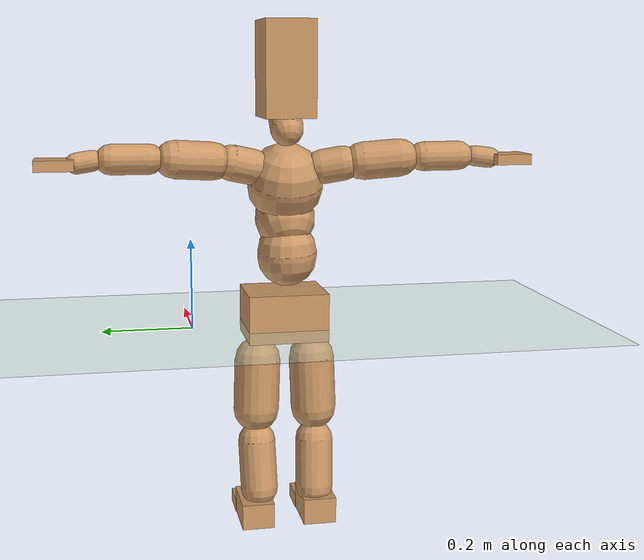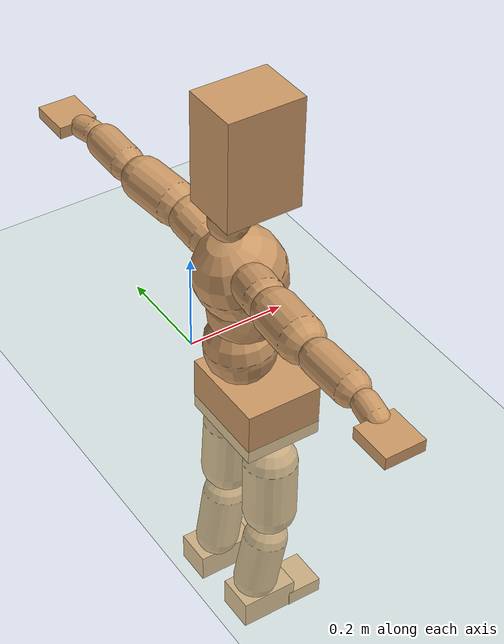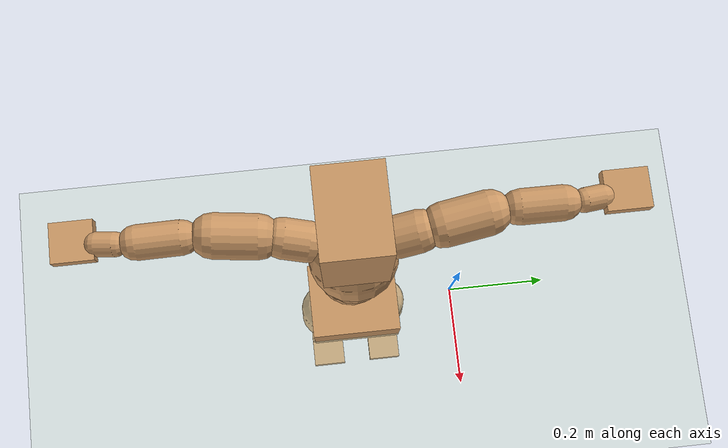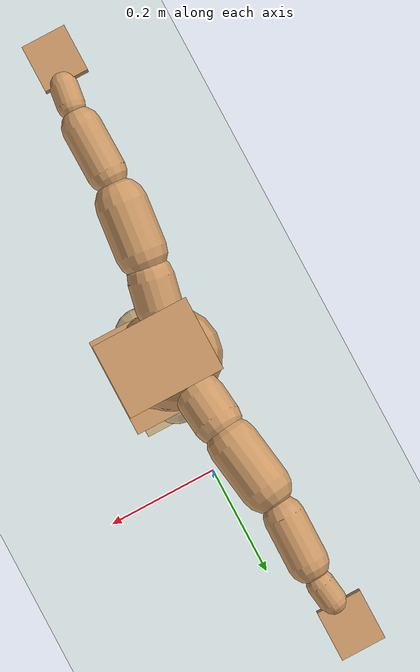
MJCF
<mujoco model="humanoid">
  <compiler coordinate="local"/>
  <default>
    <joint damping="0.0" armature="0.01" stiffness="0.0" limited="true"/>
    <geom conaffinity="1" condim="3" contype="7" margin="0.001" rgba="0.8 0.6 .4 1"/>
  </default>
  <asset>
    <texture type="skybox" builtin="gradient" rgb1=".4 .5 .6" rgb2="0 0 0" width="100" height="100"/>
    <texture builtin="flat" height="1278" mark="cross" markrgb="1 1 1" name="texgeom" random="0.01" rgb1="0.8 0.6 0.4" rgb2="0.8 0.6 0.4" type="cube" width="127"/>
    <texture builtin="checker" height="100" name="texplane" rgb1="0 0 0" rgb2="0.8 0.8 0.8" type="2d" width="100"/>
    <material name="MatPlane" reflectance="0.5" shininess="1" specular="1" texrepeat="60 60" texture="texplane"/>
    <material name="geom" texture="texgeom" texuniform="true"/>
  </asset>
  <worldbody>
    <light cutoff="100" diffuse="1 1 1" dir="-0 0 -1.3" directional="true" exponent="1" pos="0 0 1.3" specular=".1 .1 .1"/>
    <geom conaffinity="1" condim="3" name="floor" pos="0 0 0" rgba="0.8 0.9 0.8 1" size="100 100 .2" type="plane" material="MatPlane"/>
    <body name="Pelvis" pos="-0.0029 -0.2084 0.0307">
      <freejoint name="Pelvis"/>
      <geom type="box" pos="0.0101 0.0004 -0.0052" size="0.0749 0.0892 0.0541" quat="1.0000 0.0000 0.0000 0.0000" name="Pelvis" density="1000"/>
      <body name="L_Hip" pos="-0.0013 0.0618 -0.0706">
        <joint name="L_Hip_x" type="hinge" pos="0 0 0" axis="1 0 0" stiffness="800" damping="80" armature="0.02" range="-180.0000 180.0000"/>
        <joint name="L_Hip_y" type="hinge" pos="0 0 0" axis="0 1 0" stiffness="800" damping="80" armature="0.02" range="-180.0000 180.0000"/>
        <joint name="L_Hip_z" type="hinge" pos="0 0 0" axis="0 0 1" stiffness="800" damping="80" armature="0.02" range="-180.0000 180.0000"/>
        <geom type="capsule" contype="1" conaffinity="1" density="2040.816327" fromto="-0.0009 0.0013 -0.0384 -0.0035 0.0052 -0.1534" size="0.0514" name="L_Hip"/>
        <body name="L_Knee" pos="-0.0043 0.0065 -0.1918">
          <joint name="L_Knee_x" type="hinge" pos="0 0 0" axis="1 0 0" stiffness="800" damping="80" armature="0.02" range="-180.0000 180.0000"/>
          <joint name="L_Knee_y" type="hinge" pos="0 0 0" axis="0 1 0" stiffness="800" damping="80" armature="0.02" range="-180.0000 180.0000"/>
          <joint name="L_Knee_z" type="hinge" pos="0 0 0" axis="0 0 1" stiffness="800" damping="80" armature="0.02" range="-180.0000 180.0000"/>
          <geom type="capsule" contype="1" conaffinity="1" density="1234.567901" fromto="-0.0061 -0.0009 -0.0358 -0.0242 -0.0037 -0.1431" size="0.0421" name="L_Knee"/>
          <body name="L_Ankle" pos="-0.0303 -0.0047 -0.1789">
            <joint name="L_Ankle_x" type="hinge" pos="0 0 0" axis="1 0 0" stiffness="800" damping="80" armature="0.02" range="-180.0000 180.0000"/>
            <joint name="L_Ankle_y" type="hinge" pos="0 0 0" axis="0 1 0" stiffness="800" damping="80" armature="0.02" range="-180.0000 180.0000"/>
            <joint name="L_Ankle_z" type="hinge" pos="0 0 0" axis="0 0 1" stiffness="800" damping="80" armature="0.02" range="-180.0000 180.0000"/>
            <geom type="box" pos="0.0142 0.0106 -0.0148" size="0.0589 0.0364 0.0285" quat="1.0000 0.0000 0.0000 0.0000" name="L_Ankle" density="1000"/>
            <body name="L_Toe" pos="0.0779 0.0127 -0.0315">
              <joint name="L_Toe_x" type="hinge" pos="0 0 0" axis="1 0 0" stiffness="500" damping="50" armature="0.02" range="-180.0000 180.0000"/>
              <joint name="L_Toe_y" type="hinge" pos="0 0 0" axis="0 1 0" stiffness="500" damping="50" armature="0.02" range="-180.0000 180.0000"/>
              <joint name="L_Toe_z" type="hinge" pos="0 0 0" axis="0 0 1" stiffness="500" damping="50" armature="0.02" range="-180.0000 180.0000"/>
              <geom type="box" pos="0.0171 -0.0022 0.0024" size="0.0365 0.038 0.0142" quat="1.0000 0.0000 0.0000 0.0000" name="L_Toe" density="1000"/>
            </body>
          </body>
        </body>
      </body>
      <body name="R_Hip" pos="0.0024 -0.0607 -0.0697">
        <joint name="R_Hip_x" type="hinge" pos="0 0 0" axis="1 0 0" stiffness="800" damping="80" armature="0.02" range="-180.0000 180.0000"/>
        <joint name="R_Hip_y" type="hinge" pos="0 0 0" axis="0 1 0" stiffness="800" damping="80" armature="0.02" range="-180.0000 180.0000"/>
        <joint name="R_Hip_z" type="hinge" pos="0 0 0" axis="0 0 1" stiffness="800" damping="80" armature="0.02" range="-180.0000 180.0000"/>
        <geom type="capsule" contype="1" conaffinity="1" density="2040.816327" fromto="-0.0006 -0.0015 -0.0396 -0.0025 -0.0060 -0.1584" size="0.0512" name="R_Hip"/>
        <body name="R_Knee" pos="-0.0031 -0.0076 -0.198">
          <joint name="R_Knee_x" type="hinge" pos="0 0 0" axis="1 0 0" stiffness="800" damping="80" armature="0.02" range="-180.0000 180.0000"/>
          <joint name="R_Knee_y" type="hinge" pos="0 0 0" axis="0 1 0" stiffness="800" damping="80" armature="0.02" range="-180.0000 180.0000"/>
          <joint name="R_Knee_z" type="hinge" pos="0 0 0" axis="0 0 1" stiffness="800" damping="80" armature="0.02" range="-180.0000 180.0000"/>
          <geom type="capsule" contype="1" conaffinity="1" density="1234.567901" fromto="-0.0063 0.0010 -0.0357 -0.0251 0.0040 -0.1430" size="0.0427" name="R_Knee"/>
          <body name="R_Ankle" pos="-0.0314 0.0051 -0.1787">
            <joint name="R_Ankle_x" type="hinge" pos="0 0 0" axis="1 0 0" stiffness="800" damping="80" armature="0.02" range="-180.0000 180.0000"/>
            <joint name="R_Ankle_y" type="hinge" pos="0 0 0" axis="0 1 0" stiffness="800" damping="80" armature="0.02" range="-180.0000 180.0000"/>
            <joint name="R_Ankle_z" type="hinge" pos="0 0 0" axis="0 0 1" stiffness="800" damping="80" armature="0.02" range="-180.0000 180.0000"/>
            <geom type="box" pos="0.0135 -0.0053 -0.0098" size="0.0558 0.0371 0.0295" quat="1.0000 0.0000 0.0000 0.0000" name="R_Ankle" density="1000"/>
            <body name="R_Toe" pos="0.0785 -0.0078 -0.023">
              <joint name="R_Toe_x" type="hinge" pos="0 0 0" axis="1 0 0" stiffness="500" damping="50" armature="0.02" range="-180.0000 180.0000"/>
              <joint name="R_Toe_y" type="hinge" pos="0 0 0" axis="0 1 0" stiffness="500" damping="50" armature="0.02" range="-180.0000 180.0000"/>
              <joint name="R_Toe_z" type="hinge" pos="0 0 0" axis="0 0 1" stiffness="500" damping="50" armature="0.02" range="-180.0000 180.0000"/>
              <geom type="box" pos="0.0154 0.0026 -0.0004" size="0.0355 0.0385 0.016" quat="1.0000 0.0000 0.0000 0.0000" name="R_Toe" density="1000"/>
            </body>
          </body>
        </body>
      </body>
      <body name="Torso" pos="-0.0219 -0.0021 0.08">
        <joint name="Torso_x" type="hinge" pos="0 0 0" axis="1 0 0" stiffness="1000" damping="100" armature="0.02" range="-180.0000 180.0000"/>
        <joint name="Torso_y" type="hinge" pos="0 0 0" axis="0 1 0" stiffness="1000" damping="100" armature="0.02" range="-180.0000 180.0000"/>
        <joint name="Torso_z" type="hinge" pos="0 0 0" axis="0 0 1" stiffness="1000" damping="100" armature="0.02" range="-180.0000 180.0000"/>
        <geom type="capsule" contype="1" conaffinity="1" density="2040.816327" fromto="-0.0044 0.0015 0.0512 -0.0053 0.0018 0.0626" size="0.0659" name="Torso"/>
        <body name="Spine" pos="-0.0097 0.0033 0.1138">
          <joint name="Spine_x" type="hinge" pos="0 0 0" axis="1 0 0" stiffness="1000" damping="100" armature="0.02" range="-180.0000 180.0000"/>
          <joint name="Spine_y" type="hinge" pos="0 0 0" axis="0 1 0" stiffness="1000" damping="100" armature="0.02" range="-180.0000 180.0000"/>
          <joint name="Spine_z" type="hinge" pos="0 0 0" axis="0 0 1" stiffness="1000" damping="100" armature="0.02" range="-180.0000 180.0000"/>
          <geom type="capsule" contype="1" conaffinity="1" density="2040.816327" fromto="0.0125 0.0013 0.0192 0.0152 0.0016 0.0234" size="0.066" name="Spine"/>
          <body name="Chest" pos="0.0277 0.0029 0.0426">
            <joint name="Chest_x" type="hinge" pos="0 0 0" axis="1 0 0" stiffness="1000" damping="100" armature="0.02" range="-180.0000 180.0000"/>
            <joint name="Chest_y" type="hinge" pos="0 0 0" axis="0 1 0" stiffness="1000" damping="100" armature="0.02" range="-180.0000 180.0000"/>
            <joint name="Chest_z" type="hinge" pos="0 0 0" axis="0 0 1" stiffness="1000" damping="100" armature="0.02" range="-180.0000 180.0000"/>
            <geom type="capsule" contype="1" conaffinity="1" density="2040.816327" fromto="-0.0207 -0.0004 0.0517 -0.0253 -0.0005 0.0632" size="0.0826" name="Chest"/>
            <body name="Neck" pos="-0.0561 -0.001 0.163">
              <joint name="Neck_x" type="hinge" pos="0 0 0" axis="1 0 0" stiffness="500" damping="50" armature="0.02" range="-180.0000 180.0000"/>
              <joint name="Neck_y" type="hinge" pos="0 0 0" axis="0 1 0" stiffness="500" damping="50" armature="0.02" range="-180.0000 180.0000"/>
              <joint name="Neck_z" type="hinge" pos="0 0 0" axis="0 0 1" stiffness="500" damping="50" armature="0.02" range="-180.0000 180.0000"/>
              <geom type="capsule" contype="1" conaffinity="1" density="1000" fromto="0.0092 0.0006 0.0109 0.0368 0.0023 0.0437" size="0.0357" name="Neck"/>
              <body name="Head" pos="0.046 0.0028 0.0546">
                <joint name="Head_x" type="hinge" pos="0 0 0" axis="1 0 0" stiffness="500" damping="50" armature="0.02" range="-180.0000 180.0000"/>
                <joint name="Head_y" type="hinge" pos="0 0 0" axis="0 1 0" stiffness="500" damping="50" armature="0.02" range="-180.0000 180.0000"/>
                <joint name="Head_z" type="hinge" pos="0 0 0" axis="0 0 1" stiffness="500" damping="50" armature="0.02" range="-180.0000 180.0000"/>
                <geom type="box" pos="-0.0054 -0.0049 0.0834" size="0.0713 0.0547 0.1031" quat="1.0000 0.0000 0.0000 0.0000" name="Head" density="1000"/>
              </body>
            </body>
            <body name="L_Thorax" pos="-0.0374 0.0602 0.0913">
              <joint name="L_Thorax_x" type="hinge" pos="0 0 0" axis="1 0 0" stiffness="500" damping="50" armature="0.02" range="-180.0000 180.0000"/>
              <joint name="L_Thorax_y" type="hinge" pos="0 0 0" axis="0 1 0" stiffness="500" damping="50" armature="0.02" range="-180.0000 180.0000"/>
              <joint name="L_Thorax_z" type="hinge" pos="0 0 0" axis="0 0 1" stiffness="500" damping="50" armature="0.02" range="-180.0000 180.0000"/>
              <geom type="capsule" contype="1" conaffinity="1" density="1000" fromto="-0.0016 0.0147 0.0032 -0.0063 0.0588 0.0130" size="0.0391" name="L_Thorax"/>
              <body name="L_Shoulder" pos="-0.0079 0.0735 0.0162">
                <joint name="L_Shoulder_x" type="hinge" pos="0 0 0" axis="1 0 0" stiffness="500" damping="50" armature="0.02" range="-720.0000 720.0000"/>
                <joint name="L_Shoulder_y" type="hinge" pos="0 0 0" axis="0 1 0" stiffness="500" damping="50" armature="0.02" range="-720.0000 720.0000"/>
                <joint name="L_Shoulder_z" type="hinge" pos="0 0 0" axis="0 0 1" stiffness="500" damping="50" armature="0.02" range="-720.0000 720.0000"/>
                <geom type="capsule" contype="1" conaffinity="1" density="1000" fromto="-0.0040 0.0270 0.0019 -0.0161 0.1081 0.0075" size="0.041" name="L_Shoulder"/>
                <body name="L_Elbow" pos="-0.0201 0.1351 0.0094">
                  <joint name="L_Elbow_x" type="hinge" pos="0 0 0" axis="1 0 0" stiffness="500" damping="50" armature="0.02" range="-720.0000 720.0000"/>
                  <joint name="L_Elbow_y" type="hinge" pos="0 0 0" axis="0 1 0" stiffness="500" damping="50" armature="0.02" range="-720.0000 720.0000"/>
                  <joint name="L_Elbow_z" type="hinge" pos="0 0 0" axis="0 0 1" stiffness="500" damping="50" armature="0.02" range="-720.0000 720.0000"/>
                  <geom type="capsule" contype="1" conaffinity="1" density="1000" fromto="0.0002 0.0262 0.0001 0.0009 0.1048 0.0003" size="0.0323" name="L_Elbow"/>
                  <body name="L_Wrist" pos="0.0011 0.1309 0.0004">
                    <joint name="L_Wrist_x" type="hinge" pos="0 0 0" axis="1 0 0" stiffness="300" damping="30" armature="0.02" range="-180.0000 180.0000"/>
                    <joint name="L_Wrist_y" type="hinge" pos="0 0 0" axis="0 1 0" stiffness="300" damping="30" armature="0.02" range="-180.0000 180.0000"/>
                    <joint name="L_Wrist_z" type="hinge" pos="0 0 0" axis="0 0 1" stiffness="300" damping="30" armature="0.02" range="-180.0000 180.0000"/>
                    <geom type="capsule" contype="1" conaffinity="1" density="1000" fromto="-0.0015 0.0109 -0.0016 -0.0060 0.0437 -0.0065" size="0.0222" name="L_Wrist"/>
                    <body name="L_Hand" pos="-0.0075 0.0546 -0.0082">
                      <joint name="L_Hand_x" type="hinge" pos="0 0 0" axis="1 0 0" stiffness="300" damping="30" armature="0.02" range="-180.0000 180.0000"/>
                      <joint name="L_Hand_y" type="hinge" pos="0 0 0" axis="0 1 0" stiffness="300" damping="30" armature="0.02" range="-180.0000 180.0000"/>
                      <joint name="L_Hand_z" type="hinge" pos="0 0 0" axis="0 0 1" stiffness="300" damping="30" armature="0.02" range="-180.0000 180.0000"/>
                      <geom type="box" pos="-0.0053 0.0338 0.0004" size="0.0369 0.0405 0.0114" quat="1.0000 0.0000 0.0000 0.0000" name="L_Hand" density="1000"/>
                    </body>
                  </body>
                </body>
              </body>
            </body>
            <body name="R_Thorax" pos="-0.0443 -0.062 0.0903">
              <joint name="R_Thorax_x" type="hinge" pos="0 0 0" axis="1 0 0" stiffness="500" damping="50" armature="0.02" range="-180.0000 180.0000"/>
              <joint name="R_Thorax_y" type="hinge" pos="0 0 0" axis="0 1 0" stiffness="500" damping="50" armature="0.02" range="-180.0000 180.0000"/>
              <joint name="R_Thorax_z" type="hinge" pos="0 0 0" axis="0 0 1" stiffness="500" damping="50" armature="0.02" range="-180.0000 180.0000"/>
              <geom type="capsule" contype="1" conaffinity="1" density="1000" fromto="-0.0032 -0.0150 0.0027 -0.0127 -0.0600 0.0108" size="0.0375" name="R_Thorax"/>
              <body name="R_Shoulder" pos="-0.0158 -0.075 0.0135">
                <joint name="R_Shoulder_x" type="hinge" pos="0 0 0" axis="1 0 0" stiffness="500" damping="50" armature="0.02" range="-720.0000 720.0000"/>
                <joint name="R_Shoulder_y" type="hinge" pos="0 0 0" axis="0 1 0" stiffness="500" damping="50" armature="0.02" range="-720.0000 720.0000"/>
                <joint name="R_Shoulder_z" type="hinge" pos="0 0 0" axis="0 0 1" stiffness="500" damping="50" armature="0.02" range="-720.0000 720.0000"/>
                <geom type="capsule" contype="1" conaffinity="1" density="1000" fromto="-0.0028 -0.0264 0.0021 -0.0111 -0.1054 0.0086" size="0.0412" name="R_Shoulder"/>
                <body name="R_Elbow" pos="-0.0139 -0.1318 0.0107">
                  <joint name="R_Elbow_x" type="hinge" pos="0 0 0" axis="1 0 0" stiffness="500" damping="50" armature="0.02" range="-720.0000 720.0000"/>
                  <joint name="R_Elbow_y" type="hinge" pos="0 0 0" axis="0 1 0" stiffness="500" damping="50" armature="0.02" range="-720.0000 720.0000"/>
                  <joint name="R_Elbow_z" type="hinge" pos="0 0 0" axis="0 0 1" stiffness="500" damping="50" armature="0.02" range="-720.0000 720.0000"/>
                  <geom type="capsule" contype="1" conaffinity="1" density="1000" fromto="0.0003 -0.0265 0.0001 0.0013 -0.1060 0.0004" size="0.0317" name="R_Elbow"/>
                  <body name="R_Wrist" pos="0.0016 -0.1325 0.0005">
                    <joint name="R_Wrist_x" type="hinge" pos="0 0 0" axis="1 0 0" stiffness="300" damping="30" armature="0.02" range="-180.0000 180.0000"/>
                    <joint name="R_Wrist_y" type="hinge" pos="0 0 0" axis="0 1 0" stiffness="300" damping="30" armature="0.02" range="-180.0000 180.0000"/>
                    <joint name="R_Wrist_z" type="hinge" pos="0 0 0" axis="0 0 1" stiffness="300" damping="30" armature="0.02" range="-180.0000 180.0000"/>
                    <geom type="capsule" contype="1" conaffinity="1" density="1000" fromto="-0.0015 -0.0108 -0.0012 -0.0058 -0.0433 -0.0050" size="0.0225" name="R_Wrist"/>
                    <body name="R_Hand" pos="-0.0073 -0.0541 -0.0062">
                      <joint name="R_Hand_x" type="hinge" pos="0 0 0" axis="1 0 0" stiffness="300" damping="30" armature="0.02" range="-180.0000 180.0000"/>
                      <joint name="R_Hand_y" type="hinge" pos="0 0 0" axis="0 1 0" stiffness="300" damping="30" armature="0.02" range="-180.0000 180.0000"/>
                      <joint name="R_Hand_z" type="hinge" pos="0 0 0" axis="0 0 1" stiffness="300" damping="30" armature="0.02" range="-180.0000 180.0000"/>
                      <geom type="box" pos="-0.0060 -0.0311 -0.0007" size="0.0365 0.0386 0.0113" quat="1.0000 0.0000 0.0000 0.0000" name="R_Hand" density="1000"/>
                    </body>
                  </body>
                </body>
              </body>
            </body>
          </body>
        </body>
      </body>
    </body>
  </worldbody>
  <actuator>
    <motor name="L_Hip_x" joint="L_Hip_x" gear="500"/>
    <motor name="L_Hip_y" joint="L_Hip_y" gear="500"/>
    <motor name="L_Hip_z" joint="L_Hip_z" gear="500"/>
    <motor name="L_Knee_x" joint="L_Knee_x" gear="500"/>
    <motor name="L_Knee_y" joint="L_Knee_y" gear="500"/>
    <motor name="L_Knee_z" joint="L_Knee_z" gear="500"/>
    <motor name="L_Ankle_x" joint="L_Ankle_x" gear="500"/>
    <motor name="L_Ankle_y" joint="L_Ankle_y" gear="500"/>
    <motor name="L_Ankle_z" joint="L_Ankle_z" gear="500"/>
    <motor name="L_Toe_x" joint="L_Toe_x" gear="500"/>
    <motor name="L_Toe_y" joint="L_Toe_y" gear="500"/>
    <motor name="L_Toe_z" joint="L_Toe_z" gear="500"/>
    <motor name="R_Hip_x" joint="R_Hip_x" gear="500"/>
    <motor name="R_Hip_y" joint="R_Hip_y" gear="500"/>
    <motor name="R_Hip_z" joint="R_Hip_z" gear="500"/>
    <motor name="R_Knee_x" joint="R_Knee_x" gear="500"/>
    <motor name="R_Knee_y" joint="R_Knee_y" gear="500"/>
    <motor name="R_Knee_z" joint="R_Knee_z" gear="500"/>
    <motor name="R_Ankle_x" joint="R_Ankle_x" gear="500"/>
    <motor name="R_Ankle_y" joint="R_Ankle_y" gear="500"/>
    <motor name="R_Ankle_z" joint="R_Ankle_z" gear="500"/>
    <motor name="R_Toe_x" joint="R_Toe_x" gear="500"/>
    <motor name="R_Toe_y" joint="R_Toe_y" gear="500"/>
    <motor name="R_Toe_z" joint="R_Toe_z" gear="500"/>
    <motor name="Torso_x" joint="Torso_x" gear="500"/>
    <motor name="Torso_y" joint="Torso_y" gear="500"/>
    <motor name="Torso_z" joint="Torso_z" gear="500"/>
    <motor name="Spine_x" joint="Spine_x" gear="500"/>
    <motor name="Spine_y" joint="Spine_y" gear="500"/>
    <motor name="Spine_z" joint="Spine_z" gear="500"/>
    <motor name="Chest_x" joint="Chest_x" gear="500"/>
    <motor name="Chest_y" joint="Chest_y" gear="500"/>
    <motor name="Chest_z" joint="Chest_z" gear="500"/>
    <motor name="Neck_x" joint="Neck_x" gear="500"/>
    <motor name="Neck_y" joint="Neck_y" gear="500"/>
    <motor name="Neck_z" joint="Neck_z" gear="500"/>
    <motor name="Head_x" joint="Head_x" gear="500"/>
    <motor name="Head_y" joint="Head_y" gear="500"/>
    <motor name="Head_z" joint="Head_z" gear="500"/>
    <motor name="L_Thorax_x" joint="L_Thorax_x" gear="500"/>
    <motor name="L_Thorax_y" joint="L_Thorax_y" gear="500"/>
    <motor name="L_Thorax_z" joint="L_Thorax_z" gear="500"/>
    <motor name="L_Shoulder_x" joint="L_Shoulder_x" gear="500"/>
    <motor name="L_Shoulder_y" joint="L_Shoulder_y" gear="500"/>
    <motor name="L_Shoulder_z" joint="L_Shoulder_z" gear="500"/>
    <motor name="L_Elbow_x" joint="L_Elbow_x" gear="500"/>
    <motor name="L_Elbow_y" joint="L_Elbow_y" gear="500"/>
    <motor name="L_Elbow_z" joint="L_Elbow_z" gear="500"/>
    <motor name="L_Wrist_x" joint="L_Wrist_x" gear="500"/>
    <motor name="L_Wrist_y" joint="L_Wrist_y" gear="500"/>
    <motor name="L_Wrist_z" joint="L_Wrist_z" gear="500"/>
    <motor name="L_Hand_x" joint="L_Hand_x" gear="500"/>
    <motor name="L_Hand_y" joint="L_Hand_y" gear="500"/>
    <motor name="L_Hand_z" joint="L_Hand_z" gear="500"/>
    <motor name="R_Thorax_x" joint="R_Thorax_x" gear="500"/>
    <motor name="R_Thorax_y" joint="R_Thorax_y" gear="500"/>
    <motor name="R_Thorax_z" joint="R_Thorax_z" gear="500"/>
    <motor name="R_Shoulder_x" joint="R_Shoulder_x" gear="500"/>
    <motor name="R_Shoulder_y" joint="R_Shoulder_y" gear="500"/>
    <motor name="R_Shoulder_z" joint="R_Shoulder_z" gear="500"/>
    <motor name="R_Elbow_x" joint="R_Elbow_x" gear="500"/>
    <motor name="R_Elbow_y" joint="R_Elbow_y" gear="500"/>
    <motor name="R_Elbow_z" joint="R_Elbow_z" gear="500"/>
    <motor name="R_Wrist_x" joint="R_Wrist_x" gear="500"/>
    <motor name="R_Wrist_y" joint="R_Wrist_y" gear="500"/>
    <motor name="R_Wrist_z" joint="R_Wrist_z" gear="500"/>
    <motor name="R_Hand_x" joint="R_Hand_x" gear="500"/>
    <motor name="R_Hand_y" joint="R_Hand_y" gear="500"/>
    <motor name="R_Hand_z" joint="R_Hand_z" gear="500"/>
  </actuator>
  <contact>
    <exclude body1="Torso" body2="Chest"/>
    <exclude body1="Head" body2="Chest"/>
    <exclude body1="R_Knee" body2="R_Toe"/>
    <exclude body1="R_Knee" body2="L_Ankle"/>
    <exclude body1="R_Knee" body2="L_Toe"/>
    <exclude body1="L_Knee" body2="L_Toe"/>
    <exclude body1="L_Knee" body2="R_Ankle"/>
    <exclude body1="L_Knee" body2="R_Toe"/>
    <exclude body1="L_Shoulder" body2="Chest"/>
    <exclude body1="R_Shoulder" body2="Chest"/>
  </contact>
  <sensor/>
  <size njmax="700" nconmax="700"/>
</mujoco>
